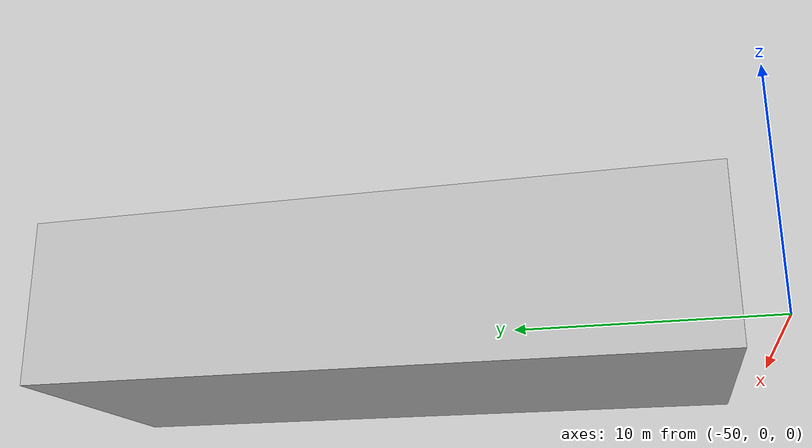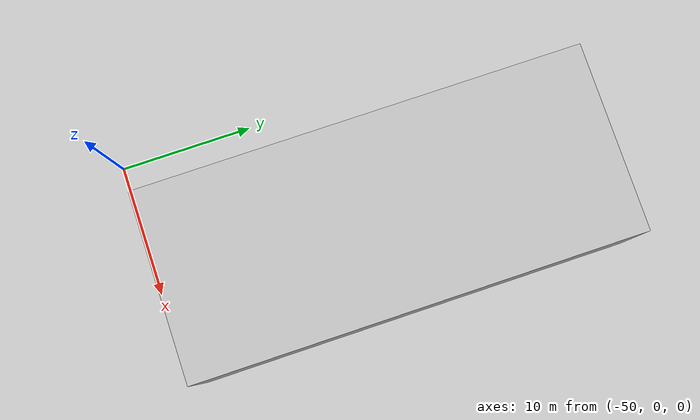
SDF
<?xml version="1.0"?>
<sdf version="1.6">
    <model name="satsop_floor02_tile9">
        <static>true</static>
        <link name="base_link">
            <collision name="collision">
                <pose>0 0 0 0 0 0</pose>
                <geometry>
                    <mesh>
                        <uri>meshes/9.dae</uri>
                        <scale>1.0 1.0 1.0</scale>
                    </mesh>
                </geometry>
            </collision>
            <visual name="visual">
                <geometry>
                    <mesh>
                        <uri>meshes/9.dae</uri>
                    </mesh>
                </geometry>
            </visual>
        </link>
    </model>
</sdf>
